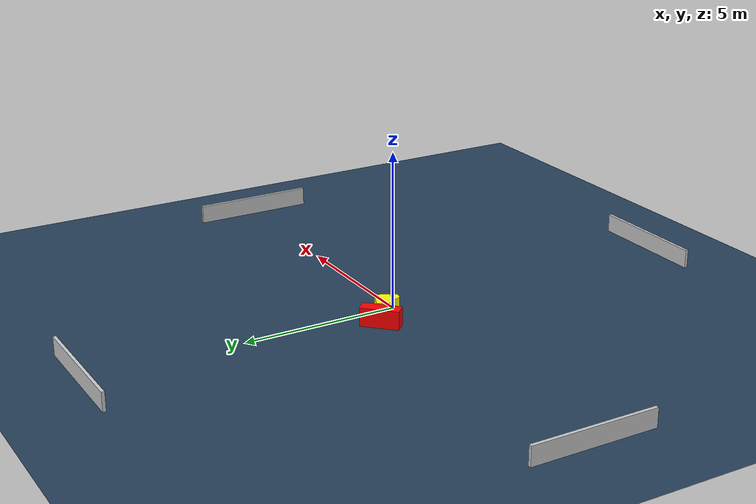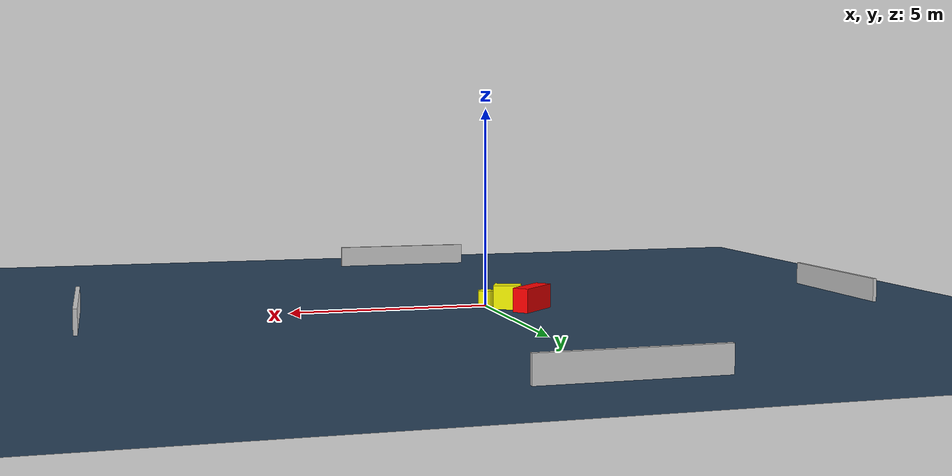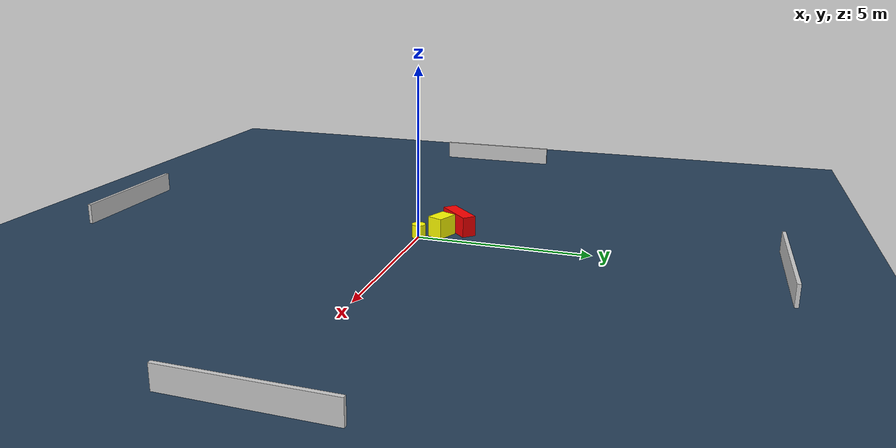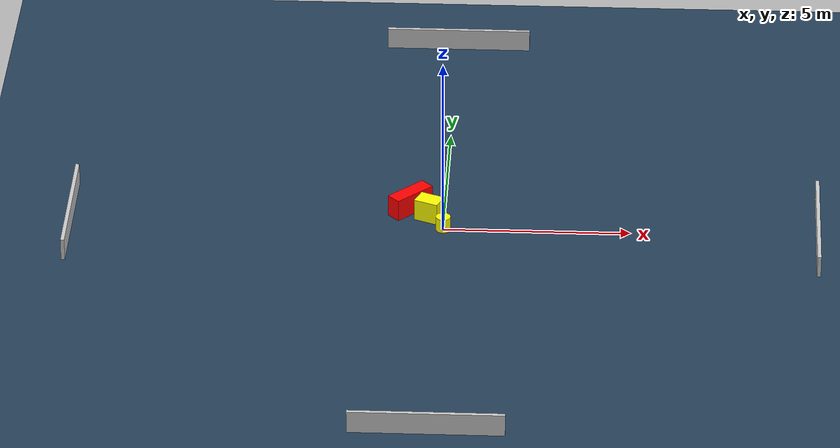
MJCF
<?xml version="1.0" ?>
<mujoco model="generated_environment">
  <option timestep="0.01" integrator="RK4" cone="elliptic"/>
  <default>
    <geom density="1"/>
  </default>
  <asset>
    <texture builtin="gradient" height="3072" name="skybox" rgb1="0.3 0.5 0.7" rgb2="0 0 0" type="skybox" width="512"/>
    <texture builtin="checker" height="300" name="groundplane" rgb1="0.2 0.3 0.4" rgb2="0.1 0.2 0.3" type="2d" width="300"/>
    <material name="groundplane" reflectance="0.2" texrepeat="5 5" texture="groundplane"/>
  </asset>
  <worldbody>
    <light dir="0 0 -1" directional="true" pos="0 0 1.5"/>
    <geom condim="3" friction="0.5 0.005 0.001" material="groundplane" name="floor" pos="0 0 0" size="0 0 0.05" type="plane"/>
    <body name="walls">
      <geom name="wall_1" condim="4" pos="-10.0 0.0 0.3" rgba="0.800000011920929 0.800000011920929 0.800000011920929 1.0" size="0.05 2.0 0.3" type="box"/>
      <geom name="wall_2" condim="4" pos="10.0 0.0 0.3" rgba="0.800000011920929 0.800000011920929 0.800000011920929 1.0" size="0.05 2.0 0.3" type="box"/>
      <geom name="wall_3" condim="4" pos="0.0 -10.0 0.3" rgba="0.800000011920929 0.800000011920929 0.800000011920929 1.0" size="2.0 0.05 0.3" type="box"/>
      <geom name="wall_4" condim="4" pos="0.0 10.0 0.3" rgba="0.800000011920929 0.800000011920929 0.800000011920929 1.0" size="2.0 0.05 0.3" type="box"/>
    </body>
    <body name="robot">
      <joint name="joint_x" type="slide" pos="0 0 0" axis="1 0 0"/>
      <joint name="joint_y" type="slide" pos="0 0 0" axis="0 1 0"/>
      <geom name="robot" type="cylinder" pos="0.0 0.0 0.2" size="0.2 0.2 0.0" mass="5.0" friction="1.0 0.005 0.0001" condim="4" rgba="1.0 1.0 0.0 1.0"/>
    </body>
    <body name="obstacle_1_movable">
      <geom name="obstacle_1_movable" condim="4" pos="-0.39911970167320615 0.5801222423364165 0.3" euler="0 0 247.17518628545616" friction="0.0 0.005 0.001" rgba="1.0 1.0 0.0 1.0" size="0.24047707691814066 0.3337793858746651 0.3" type="box" mass="0.1"/>
      <joint type="free"/>
    </body>
    <body name="obstacle_2_static">
      <geom name="obstacle_2_static" condim="4" pos="-0.9274018040032869 0.9672799776970836 0.3" euler="0 0 44.237296370480315" friction="0.0 0.005 0.001" rgba="1.0 0.0 0.0 1.0" size="0.6128021105631816 0.2066618612394116 0.3" type="box"/>
    </body>
  </worldbody>
  <actuator>
    <motor name="actuator_x" joint="joint_x" gear="1" ctrlrange="-1 1"/>
    <motor name="actuator_y" joint="joint_y" gear="1" ctrlrange="-1 1"/>
  </actuator>
</mujoco>
